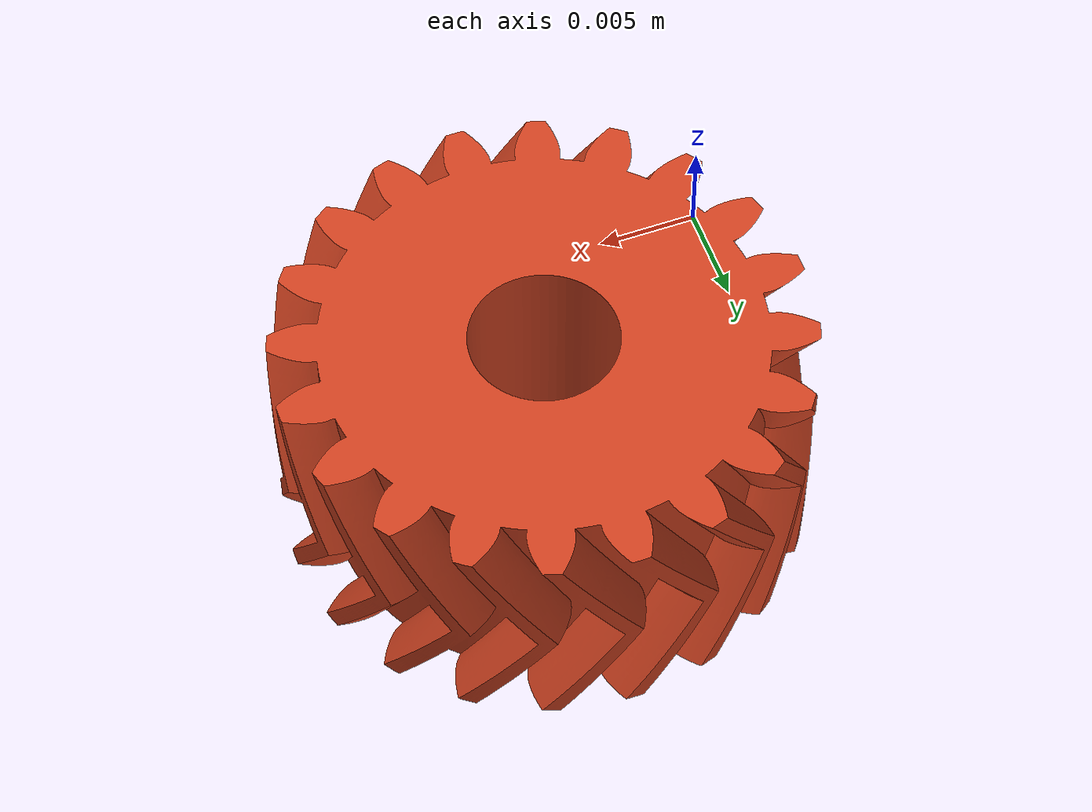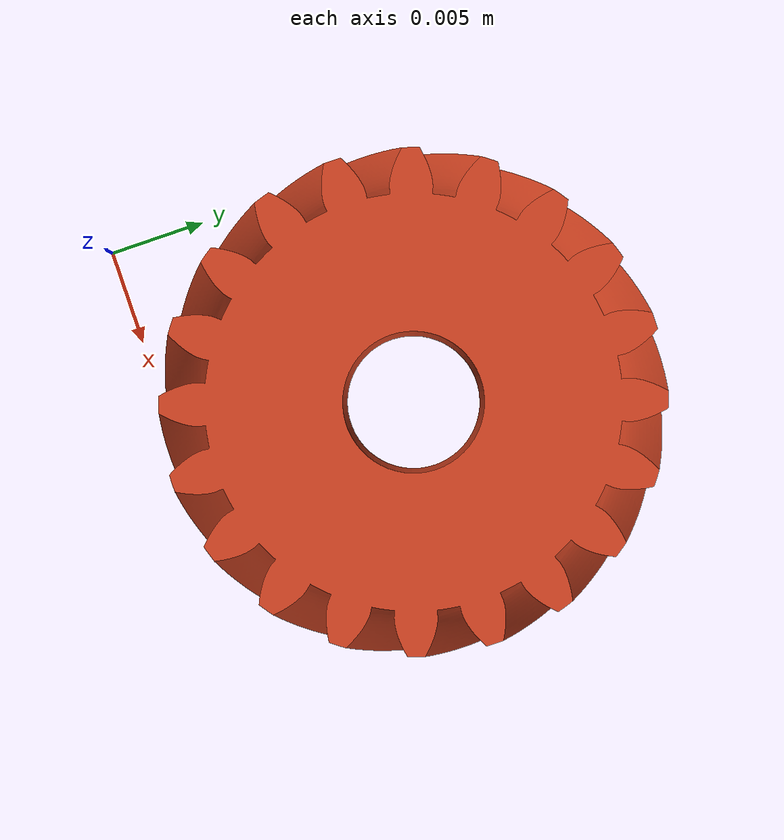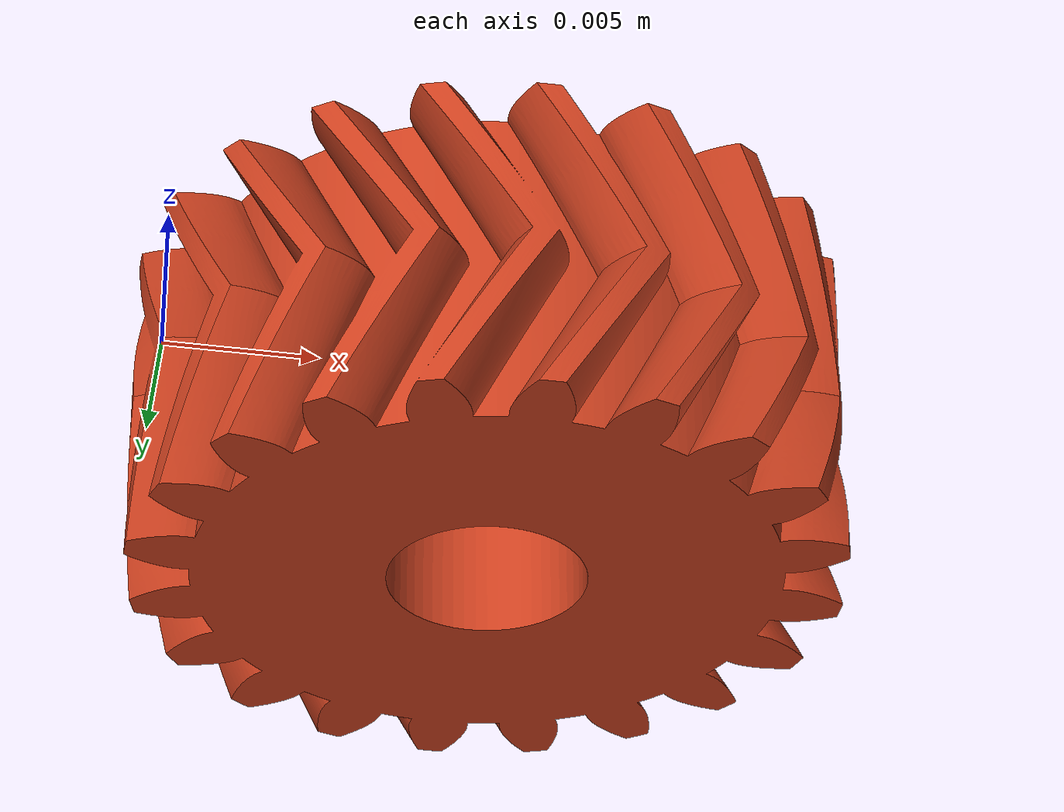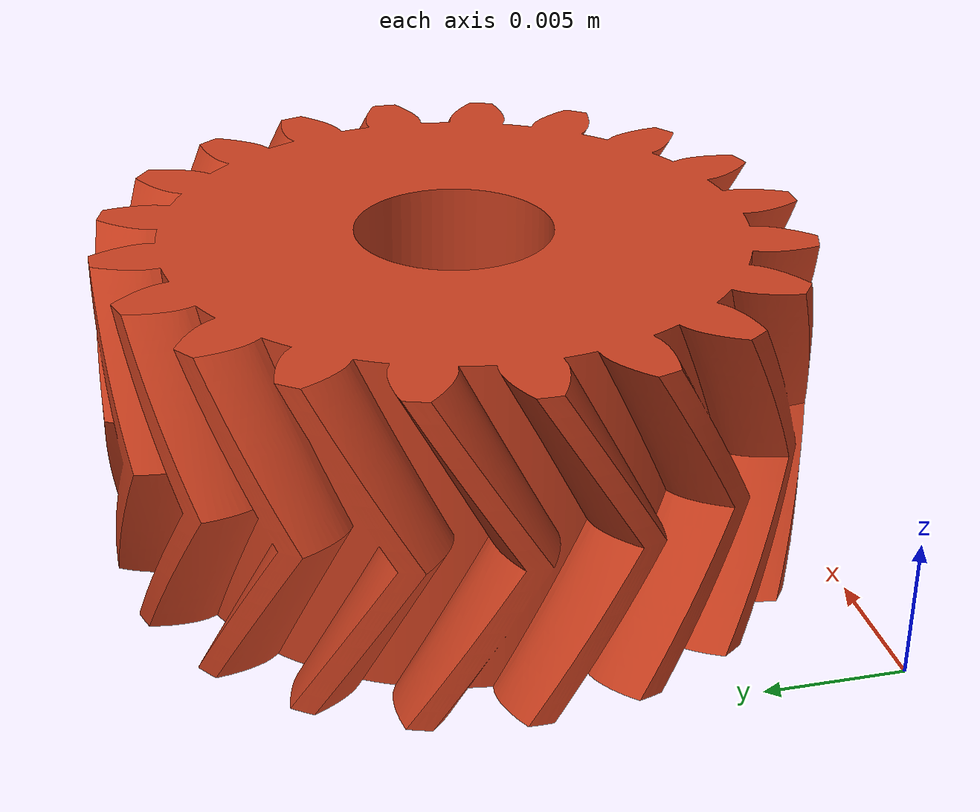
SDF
<?xml version="1.0" ?>
<sdf version="1.5">
  <model name="right_gear">
    <static>false</static>
    <link name="link">
      <collision name="collision">
        <geometry>
          <mesh>
            <scale>1 1 1</scale>
            <uri>file://models/right_gear/meshes/right_gear.stl</uri>
          </mesh>
        </geometry>
      </collision>
      <visual name="visual">
        <geometry>
          <mesh>
            <scale>1 1 1</scale>
            <uri>file://models/right_gear/meshes/right_gear.dae</uri>
          </mesh>
        </geometry>
      </visual>
    </link>
  </model>
</sdf>
